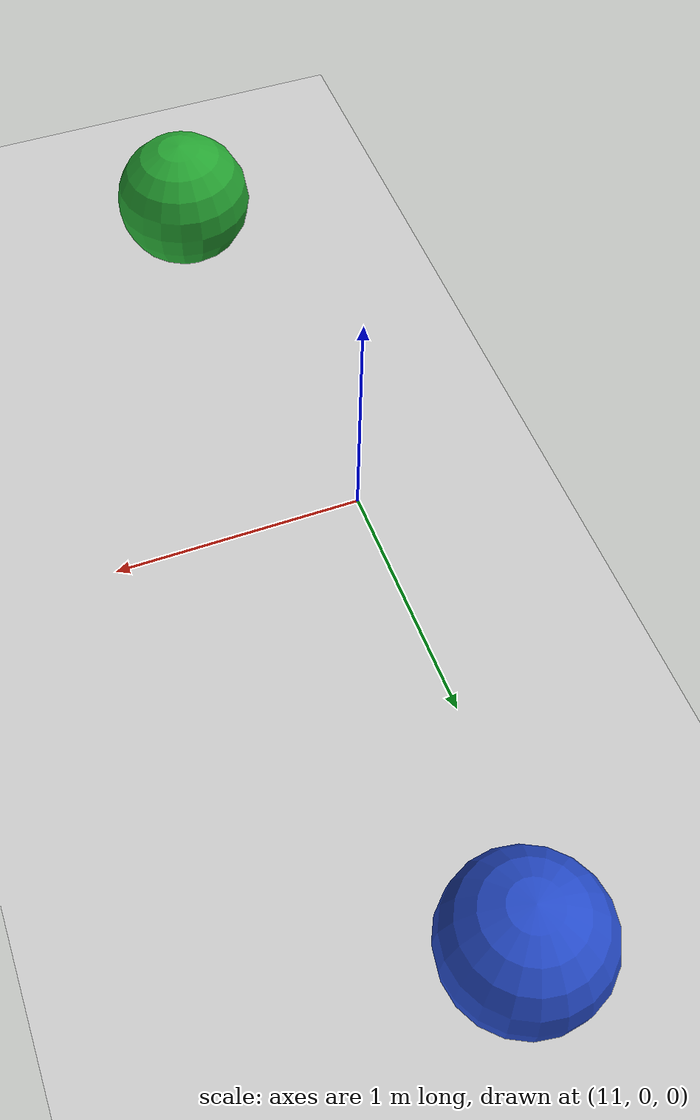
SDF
<sdf version="1.7">
 <world name="default">
  <plugin name="gazebo_ros_state" filename="libgazebo_ros_state.so"/>
  <light name="sun" type="directional">
   <pose>0 0 10 0 -0 0</pose>
   <diffuse>0.8 0.8 0.8 1</diffuse>
   <specular>0.2 0.2 0.2 1</specular>
   <attenuation>
    <range>1000</range>
    <constant>0.9</constant>
    <linear>0.01</linear>
    <quadratic>0.001</quadratic>
   </attenuation>
   <direction>-0.5 0.1 -0.9</direction>
   <spot><inner_angle>0</inner_angle><outer_angle>0</outer_angle><falloff>0</falloff></spot>
  </light>
  <model name="ground_plane">
   <static>1</static>
   <link name="link">
    <collision name="collision">
     <geometry><plane><normal>0 0 1</normal><size>100 100</size></plane></geometry>
     <surface>
      <contact><collide_bitmask>65535</collide_bitmask></contact>
      <friction><ode><mu>100</mu><mu2>50</mu2></ode></friction>
     </surface>
    </collision>
    <visual name="visual">
     <cast_shadows>0</cast_shadows>
     <geometry><plane><normal>0 0 1</normal><size>100 100</size></plane></geometry>
     <material>
      <script><uri>file://media/materials/scripts/gazebo.material</uri><name>Gazebo/Grey</name></script>
     </material>
    </visual>
   </link>
  </model>
  <gravity>0 0 -9.8</gravity>
  <magnetic_field>6e-06 2.3e-05 -4.2e-05</magnetic_field>
  <atmosphere type="adiabatic"/>
  <physics type="ode">
   <max_step_size>0.001</max_step_size>
   <real_time_factor>1</real_time_factor>
   <real_time_update_rate>1000</real_time_update_rate>
  </physics>
  <scene><ambient>0.4 0.4 0.4 1</ambient><background>0.7 0.7 0.7 1</background><shadows>1</shadows></scene>
  <audio><device>default</device></audio>
  <spherical_coordinates>
   <surface_model>EARTH_WGS84</surface_model>
   <latitude_deg>0</latitude_deg>
   <longitude_deg>0</longitude_deg>
   <elevation>0</elevation>
   <heading_deg>0</heading_deg>
  </spherical_coordinates>
  <model name="track_object_1">
   <pose>11.2118 -1.64579 0.291192 0 -0 0</pose>
   <link name="link">
    <inertial>
     <mass>1</mass>
     <inertia><ixx>0.1</ixx><ixy>0</ixy><ixz>0</ixz><iyy>0.1</iyy><iyz>0</iyz><izz>0.1</izz></inertia>
    </inertial>
    <collision name="collision"><geometry><sphere><radius>0.291192</radius></sphere></geometry></collision>
    <visual name="visual">
     <geometry><sphere><radius>0.291192</radius></sphere></geometry>
     <material>
      <script><name>Gazebo/Green</name><uri>file://media/materials/scripts/gazebo.material</uri></script>
     </material>
    </visual>
   </link>
  </model>
  <model name="track_object_2">
   <pose>11.2017 1.95706 0.291192 0 -0 0</pose>
   <link name="link">
    <inertial>
     <mass>1</mass>
     <inertia><ixx>0.1</ixx><ixy>0</ixy><ixz>0</ixz><iyy>0.1</iyy><iyz>0</iyz><izz>0.1</izz></inertia>
    </inertial>
    <collision name="collision"><geometry><sphere><radius>0.291192</radius></sphere></geometry></collision>
    <visual name="visual">
     <geometry><sphere><radius>0.291192</radius></sphere></geometry>
     <material>
      <script><name>Gazebo/Blue</name><uri>file://media/materials/scripts/gazebo.material</uri></script>
     </material>
    </visual>
   </link>
  </model>
 </world>
</sdf>
